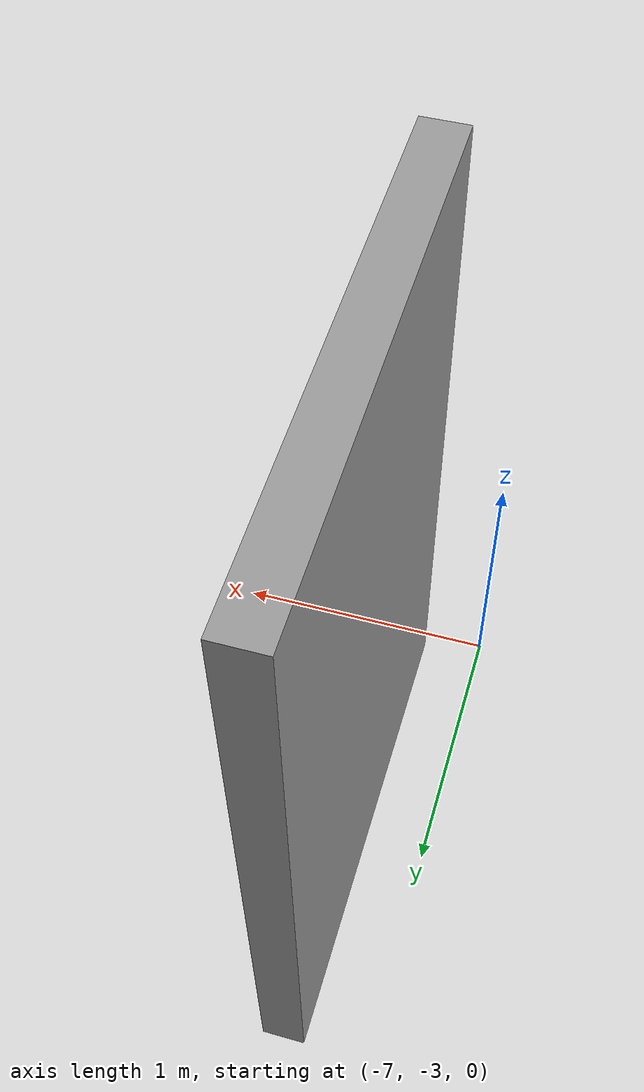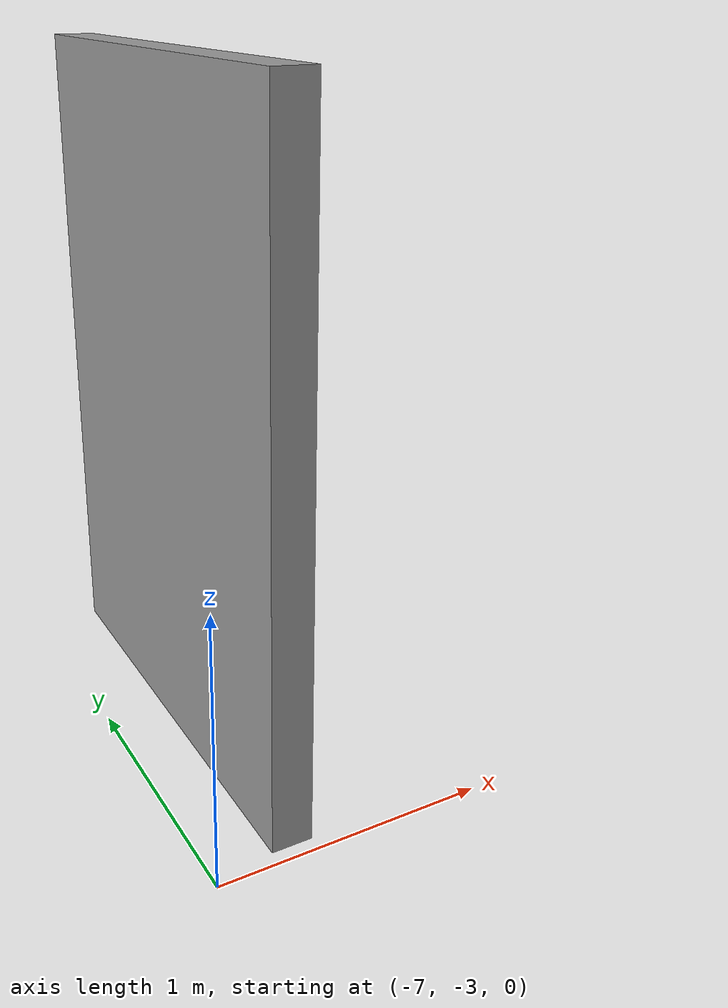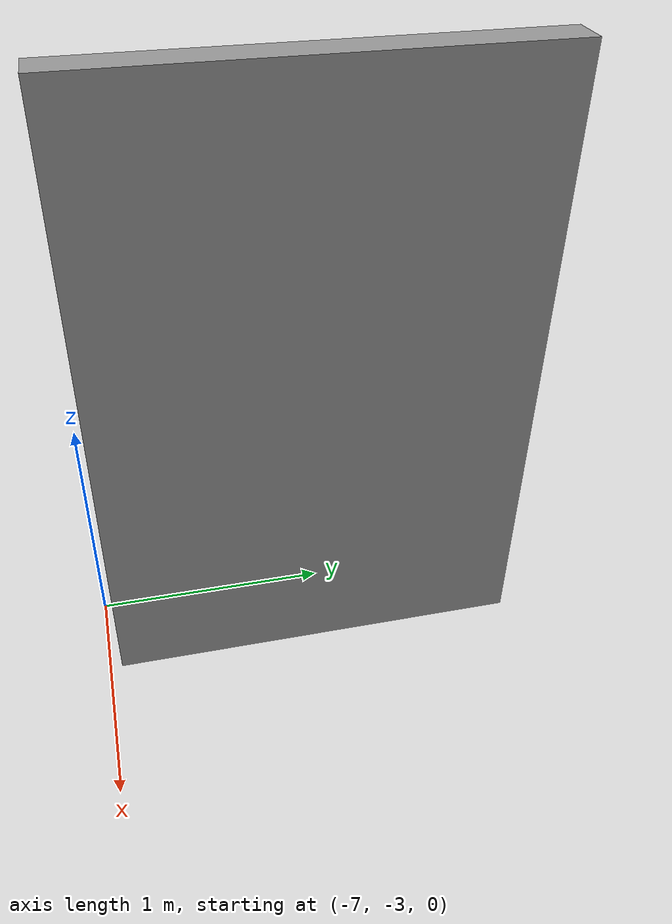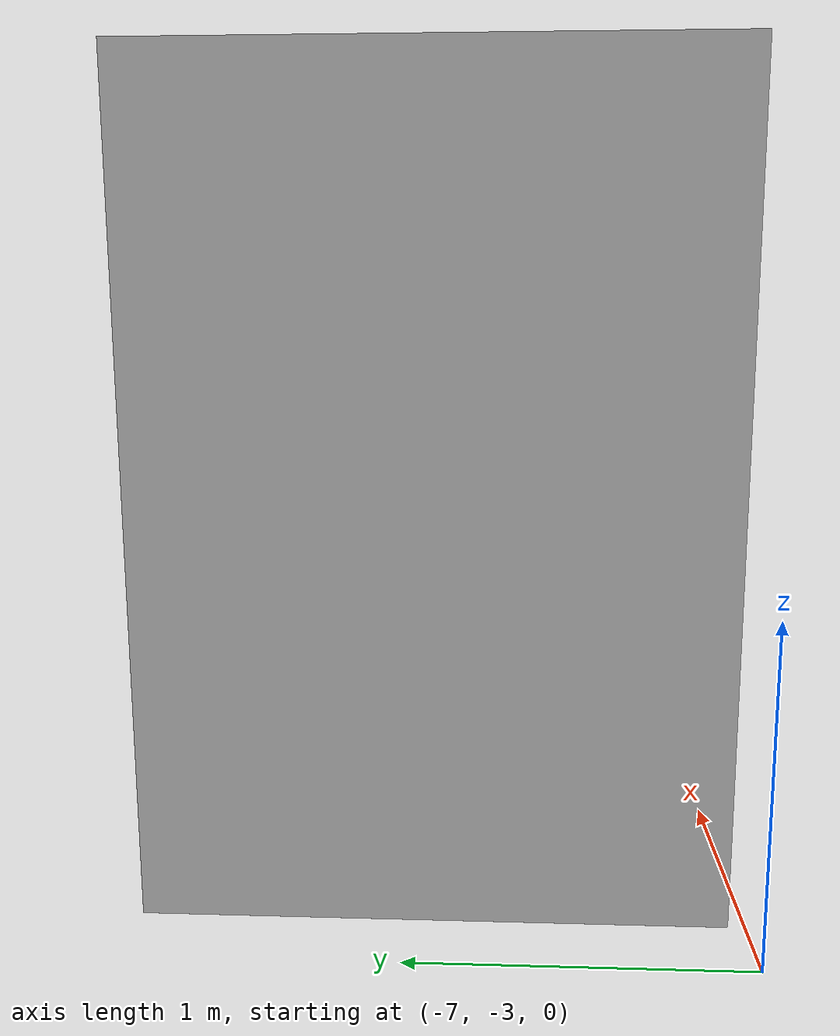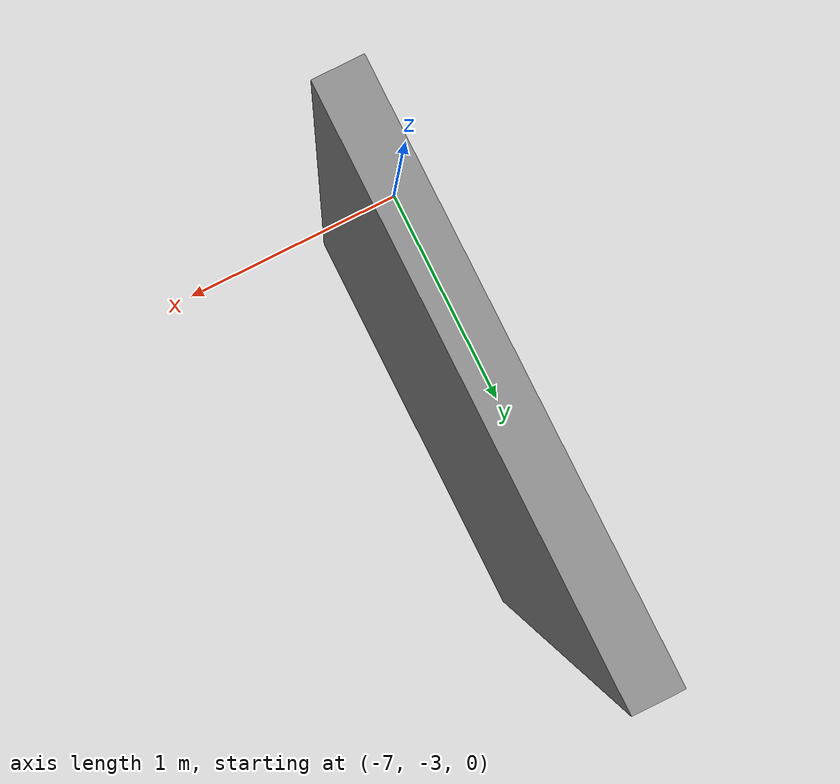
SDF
<?xml version='1.0'?>
<sdf version='1.7'>
  <model name='test'>
    <pose>-3.38813 -1.47424 0 0 -0 0</pose>
    <link name='Wall_15'>
      <collision name='Wall_15_Collision'>
        <geometry>
          <box>
            <size>1.75 0.15 2.5</size>
          </box>
        </geometry>
        <pose>0 0 1.25 0 -0 0</pose>
      </collision>
      <visual name='Wall_15_Visual'>
        <pose>0 0 1.25 0 -0 0</pose>
        <geometry>
          <box>
            <size>1.75 0.15 2.5</size>
          </box>
        </geometry>
        <material>
          <script>
            <uri>file://media/materials/scripts/gazebo.material</uri>
            <name>Gazebo/Grey</name>
          </script>
          <ambient>1 1 1 1</ambient>
        </material>
        <meta>
          <layer>0</layer>
        </meta>
      </visual>
      <pose>-3.31313 -0.599236 0 0 -0 1.5708</pose>
    </link>
    <static>1</static>
  </model>
</sdf>
